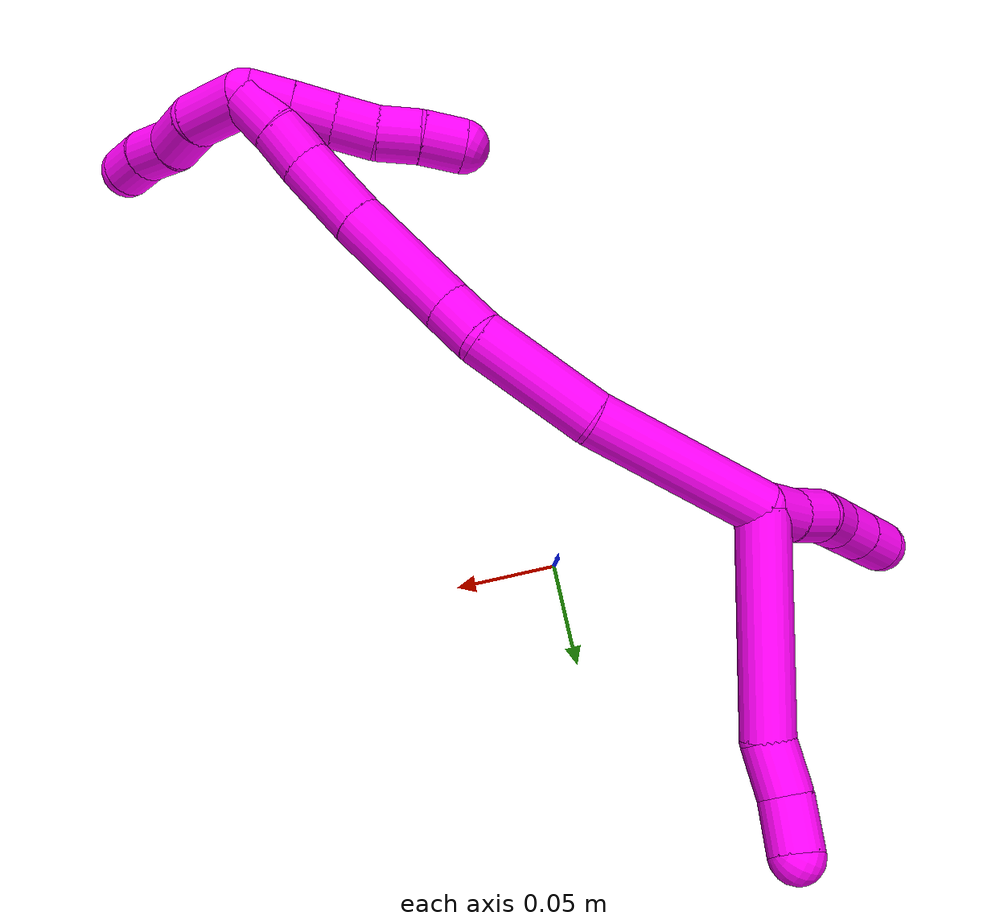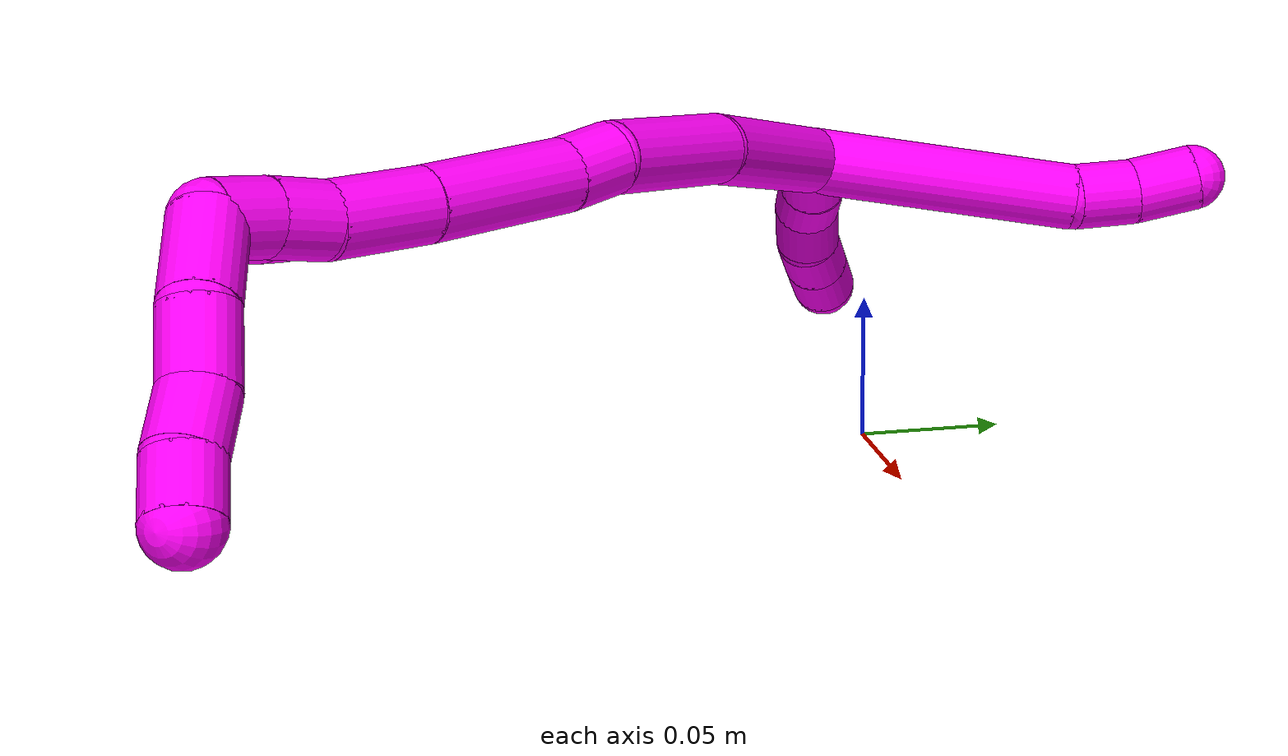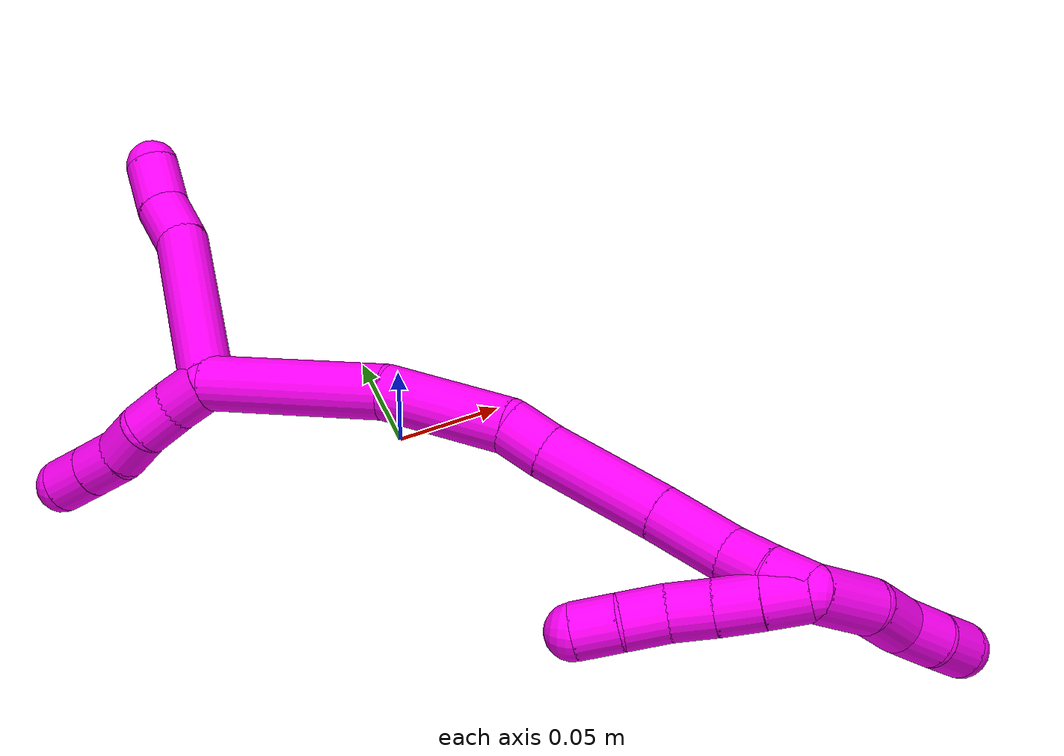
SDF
<sdf version="1.7">
 <world name="default">
  <model name="10">
   <static>0</static>
   <link name="10">
    <collision name="collision-cylinder-e_1_2_8">
     <pose>-0.035525 0.028665 -0.021549 -2.21541 -0.78068 1.37847</pose>
     <geometry><cylinder><radius>0.0125</radius><length>0.100956</length></cylinder></geometry>
     <surface>
      <friction><ode><mu>1.16</mu><mu2>1.16</mu2><slip1>0</slip1><slip2>0</slip2></ode></friction>
      <contact><ode><kp>1e+06</kp><kd>1</kd><max_vel>0</max_vel><min_depth>0.001</min_depth></ode></contact>
     </surface>
    </collision>
    <visual name="visual-cylinder-e_1_2_8">
     <pose>-0.035525 0.028665 -0.021549 -2.21541 -0.78068 1.37847</pose>
     <geometry><cylinder><radius>0.0125</radius><length>0.100956</length></cylinder></geometry>
     <material><ambient>1 0 0.964706 1</ambient></material>
    </visual>
    <collision name="collision-cylinder-e_2_8_9">
     <pose>-0.079731 0.061354 -0.050677 -2.65363 -0.791194 2.06649</pose>
     <geometry><cylinder><radius>0.0125</radius><length>0.024414</length></cylinder></geometry>
     <surface>
      <friction><ode><mu>1.16</mu><mu2>1.16</mu2><slip1>0</slip1><slip2>0</slip2></ode></friction>
      <contact><ode><kp>1e+06</kp><kd>1</kd><max_vel>0</max_vel><min_depth>0.001</min_depth></ode></contact>
     </surface>
    </collision>
    <visual name="visual-cylinder-e_2_8_9">
     <pose>-0.079731 0.061354 -0.050677 -2.65363 -0.791194 2.06649</pose>
     <geometry><cylinder><radius>0.0125</radius><length>0.024414</length></cylinder></geometry>
     <material><ambient>1 0 0.964706 1</ambient></material>
    </visual>
    <collision name="collision-cylinder-e_3_9_6">
     <pose>-0.099032 0.068327 -0.063751 -2.64878 -1.03984 2.31365</pose>
     <geometry><cylinder><radius>0.0125</radius><length>0.02463</length></cylinder></geometry>
     <surface>
      <friction><ode><mu>1.16</mu><mu2>1.16</mu2><slip1>0</slip1><slip2>0</slip2></ode></friction>
      <contact><ode><kp>1e+06</kp><kd>1</kd><max_vel>0</max_vel><min_depth>0.001</min_depth></ode></contact>
     </surface>
    </collision>
    <visual name="visual-cylinder-e_3_9_6">
     <pose>-0.099032 0.068327 -0.063751 -2.64878 -1.03984 2.31365</pose>
     <geometry><cylinder><radius>0.0125</radius><length>0.02463</length></cylinder></geometry>
     <material><ambient>1 0 0.964706 1</ambient></material>
    </visual>
    <collision name="collision-cylinder-e_1_2_10">
     <pose>0.005285 0.003006 -0.007939 -2.7797 0.556841 -2.00294</pose>
     <geometry><cylinder><radius>0.0125</radius><length>0.02</length></cylinder></geometry>
     <surface>
      <friction><ode><mu>1.16</mu><mu2>1.16</mu2><slip1>0</slip1><slip2>0</slip2></ode></friction>
      <contact><ode><kp>1e+06</kp><kd>1</kd><max_vel>0</max_vel><min_depth>0.001</min_depth></ode></contact>
     </surface>
    </collision>
    <visual name="visual-cylinder-e_1_2_10">
     <pose>0.005285 0.003006 -0.007939 -2.7797 0.556841 -2.00294</pose>
     <geometry><cylinder><radius>0.0125</radius><length>0.02</length></cylinder></geometry>
     <material><ambient>1 0 0.964706 1</ambient></material>
    </visual>
    <collision name="collision-cylinder-e_2_10_11">
     <pose>0.01671 0.008012 -0.023514 -2.88531 0.661063 -2.42314</pose>
     <geometry><cylinder><radius>0.0125</radius><length>0.02</length></cylinder></geometry>
     <surface>
      <friction><ode><mu>1.16</mu><mu2>1.16</mu2><slip1>0</slip1><slip2>0</slip2></ode></friction>
      <contact><ode><kp>1e+06</kp><kd>1</kd><max_vel>0</max_vel><min_depth>0.001</min_depth></ode></contact>
     </surface>
    </collision>
    <visual name="visual-cylinder-e_2_10_11">
     <pose>0.01671 0.008012 -0.023514 -2.88531 0.661063 -2.42314</pose>
     <geometry><cylinder><radius>0.0125</radius><length>0.02</length></cylinder></geometry>
     <material><ambient>1 0 0.964706 1</ambient></material>
    </visual>
    <collision name="collision-cylinder-e_3_11_12">
     <pose>0.028544 0.014921 -0.037744 -2.50176 0.605892 -1.51263</pose>
     <geometry><cylinder><radius>0.0125</radius><length>0.02</length></cylinder></geometry>
     <surface>
      <friction><ode><mu>1.16</mu><mu2>1.16</mu2><slip1>0</slip1><slip2>0</slip2></ode></friction>
      <contact><ode><kp>1e+06</kp><kd>1</kd><max_vel>0</max_vel><min_depth>0.001</min_depth></ode></contact>
     </surface>
    </collision>
    <visual name="visual-cylinder-e_3_11_12">
     <pose>0.028544 0.014921 -0.037744 -2.50176 0.605892 -1.51263</pose>
     <geometry><cylinder><radius>0.0125</radius><length>0.02</length></cylinder></geometry>
     <material><ambient>1 0 0.964706 1</ambient></material>
    </visual>
    <collision name="collision-cylinder-e_4_12_13">
     <pose>0.038272 0.023693 -0.052633 -2.70562 0.415133 -1.52034</pose>
     <geometry><cylinder><radius>0.0125</radius><length>0.02</length></cylinder></geometry>
     <surface>
      <friction><ode><mu>1.16</mu><mu2>1.16</mu2><slip1>0</slip1><slip2>0</slip2></ode></friction>
      <contact><ode><kp>1e+06</kp><kd>1</kd><max_vel>0</max_vel><min_depth>0.001</min_depth></ode></contact>
     </surface>
    </collision>
    <visual name="visual-cylinder-e_4_12_13">
     <pose>0.038272 0.023693 -0.052633 -2.70562 0.415133 -1.52034</pose>
     <geometry><cylinder><radius>0.0125</radius><length>0.02</length></cylinder></geometry>
     <material><ambient>1 0 0.964706 1</ambient></material>
    </visual>
    <collision name="collision-cylinder-e_5_13_5">
     <pose>0.046304 0.031355 -0.069269 -2.71434 0.411339 -1.53173</pose>
     <geometry><cylinder><radius>0.0125</radius><length>0.02</length></cylinder></geometry>
     <surface>
      <friction><ode><mu>1.16</mu><mu2>1.16</mu2><slip1>0</slip1><slip2>0</slip2></ode></friction>
      <contact><ode><kp>1e+06</kp><kd>1</kd><max_vel>0</max_vel><min_depth>0.001</min_depth></ode></contact>
     </surface>
    </collision>
    <visual name="visual-cylinder-e_5_13_5">
     <pose>0.046304 0.031355 -0.069269 -2.71434 0.411339 -1.53173</pose>
     <geometry><cylinder><radius>0.0125</radius><length>0.02</length></cylinder></geometry>
     <material><ambient>1 0 0.964706 1</ambient></material>
    </visual>
    <collision name="collision-cylinder-e_1_2_14">
     <pose>-0.001134 -0.003898 0.043 0.090401 -0.026269 -0.001188</pose>
     <geometry><cylinder><radius>0.0125</radius><length>0.086382</length></cylinder></geometry>
     <surface>
      <friction><ode><mu>1.16</mu><mu2>1.16</mu2><slip1>0</slip1><slip2>0</slip2></ode></friction>
      <contact><ode><kp>1e+06</kp><kd>1</kd><max_vel>0</max_vel><min_depth>0.001</min_depth></ode></contact>
     </surface>
    </collision>
    <visual name="visual-cylinder-e_1_2_14">
     <pose>-0.001134 -0.003898 0.043 0.090401 -0.026269 -0.001188</pose>
     <geometry><cylinder><radius>0.0125</radius><length>0.086382</length></cylinder></geometry>
     <material><ambient>1 0 0.964706 1</ambient></material>
    </visual>
    <collision name="collision-cylinder-e_2_14_15">
     <pose>0.00294 -0.01035 0.115323 0.086886 0.175139 0.007633</pose>
     <geometry><cylinder><radius>0.0125</radius><length>0.059784</length></cylinder></geometry>
     <surface>
      <friction><ode><mu>1.16</mu><mu2>1.16</mu2><slip1>0</slip1><slip2>0</slip2></ode></friction>
      <contact><ode><kp>1e+06</kp><kd>1</kd><max_vel>0</max_vel><min_depth>0.001</min_depth></ode></contact>
     </surface>
    </collision>
    <visual name="visual-cylinder-e_2_14_15">
     <pose>0.00294 -0.01035 0.115323 0.086886 0.175139 0.007633</pose>
     <geometry><cylinder><radius>0.0125</radius><length>0.059784</length></cylinder></geometry>
     <material><ambient>1 0 0.964706 1</ambient></material>
    </visual>
    <collision name="collision-cylinder-e_3_15_16">
     <pose>0.012889 -0.012782 0.153844 -0.013232 0.475902 -0.00321</pose>
     <geometry><cylinder><radius>0.0125</radius><length>0.020697</length></cylinder></geometry>
     <surface>
      <friction><ode><mu>1.16</mu><mu2>1.16</mu2><slip1>0</slip1><slip2>0</slip2></ode></friction>
      <contact><ode><kp>1e+06</kp><kd>1</kd><max_vel>0</max_vel><min_depth>0.001</min_depth></ode></contact>
     </surface>
    </collision>
    <visual name="visual-cylinder-e_3_15_16">
     <pose>0.012889 -0.012782 0.153844 -0.013232 0.475902 -0.00321</pose>
     <geometry><cylinder><radius>0.0125</radius><length>0.020697</length></cylinder></geometry>
     <material><ambient>1 0 0.964706 1</ambient></material>
    </visual>
    <collision name="collision-cylinder-e_4_16_17">
     <pose>0.028558 -0.014889 0.189185 0.085018 0.394639 0.017007</pose>
     <geometry><cylinder><radius>0.0125</radius><length>0.056846</length></cylinder></geometry>
     <surface>
      <friction><ode><mu>1.16</mu><mu2>1.16</mu2><slip1>0</slip1><slip2>0</slip2></ode></friction>
      <contact><ode><kp>1e+06</kp><kd>1</kd><max_vel>0</max_vel><min_depth>0.001</min_depth></ode></contact>
     </surface>
    </collision>
    <visual name="visual-cylinder-e_4_16_17">
     <pose>0.028558 -0.014889 0.189185 0.085018 0.394639 0.017007</pose>
     <geometry><cylinder><radius>0.0125</radius><length>0.056846</length></cylinder></geometry>
     <material><ambient>1 0 0.964706 1</ambient></material>
    </visual>
    <collision name="collision-cylinder-e_5_17_18">
     <pose>0.046765 -0.019491 0.231578 0.145058 0.417227 0.030759</pose>
     <geometry><cylinder><radius>0.0125</radius><length>0.035925</length></cylinder></geometry>
     <surface>
      <friction><ode><mu>1.16</mu><mu2>1.16</mu2><slip1>0</slip1><slip2>0</slip2></ode></friction>
      <contact><ode><kp>1e+06</kp><kd>1</kd><max_vel>0</max_vel><min_depth>0.001</min_depth></ode></contact>
     </surface>
    </collision>
    <visual name="visual-cylinder-e_5_17_18">
     <pose>0.046765 -0.019491 0.231578 0.145058 0.417227 0.030759</pose>
     <geometry><cylinder><radius>0.0125</radius><length>0.035925</length></cylinder></geometry>
     <material><ambient>1 0 0.964706 1</ambient></material>
    </visual>
    <collision name="collision-cylinder-e_6_18_19">
     <pose>0.057322 -0.024861 0.256945 0.317585 0.329172 0.053183</pose>
     <geometry><cylinder><radius>0.0125</radius><length>0.020285</length></cylinder></geometry>
     <surface>
      <friction><ode><mu>1.16</mu><mu2>1.16</mu2><slip1>0</slip1><slip2>0</slip2></ode></friction>
      <contact><ode><kp>1e+06</kp><kd>1</kd><max_vel>0</max_vel><min_depth>0.001</min_depth></ode></contact>
     </surface>
    </collision>
    <visual name="visual-cylinder-e_6_18_19">
     <pose>0.057322 -0.024861 0.256945 0.317585 0.329172 0.053183</pose>
     <geometry><cylinder><radius>0.0125</radius><length>0.020285</length></cylinder></geometry>
     <material><ambient>1 0 0.964706 1</ambient></material>
    </visual>
    <collision name="collision-cylinder-e_7_19_1">
     <pose>0.063581 -0.029796 0.275454 0.203394 0.301322 0.030982</pose>
     <geometry><cylinder><radius>0.0125</radius><length>0.020082</length></cylinder></geometry>
     <surface>
      <friction><ode><mu>1.16</mu><mu2>1.16</mu2><slip1>0</slip1><slip2>0</slip2></ode></friction>
      <contact><ode><kp>1e+06</kp><kd>1</kd><max_vel>0</max_vel><min_depth>0.001</min_depth></ode></contact>
     </surface>
    </collision>
    <visual name="visual-cylinder-e_7_19_1">
     <pose>0.063581 -0.029796 0.275454 0.203394 0.301322 0.030982</pose>
     <geometry><cylinder><radius>0.0125</radius><length>0.020082</length></cylinder></geometry>
     <material><ambient>1 0 0.964706 1</ambient></material>
    </visual>
    <collision name="collision-cylinder-e_1_1_20">
     <pose>0.067587 -0.019036 0.295194 -0.886889 0.062549 -0.029718</pose>
     <geometry><cylinder><radius>0.0125</radius><length>0.032825</length></cylinder></geometry>
     <surface>
      <friction><ode><mu>1.16</mu><mu2>1.16</mu2><slip1>0</slip1><slip2>0</slip2></ode></friction>
      <contact><ode><kp>1e+06</kp><kd>1</kd><max_vel>0</max_vel><min_depth>0.001</min_depth></ode></contact>
     </surface>
    </collision>
    <visual name="visual-cylinder-e_1_1_20">
     <pose>0.067587 -0.019036 0.295194 -0.886889 0.062549 -0.029718</pose>
     <geometry><cylinder><radius>0.0125</radius><length>0.032825</length></cylinder></geometry>
     <material><ambient>1 0 0.964706 1</ambient></material>
    </visual>
    <collision name="collision-cylinder-e_2_20_21">
     <pose>0.07124 0.004982 0.310601 -1.15071 0.208807 -0.135708</pose>
     <geometry><cylinder><radius>0.0125</radius><length>0.025349</length></cylinder></geometry>
     <surface>
      <friction><ode><mu>1.16</mu><mu2>1.16</mu2><slip1>0</slip1><slip2>0</slip2></ode></friction>
      <contact><ode><kp>1e+06</kp><kd>1</kd><max_vel>0</max_vel><min_depth>0.001</min_depth></ode></contact>
     </surface>
    </collision>
    <visual name="visual-cylinder-e_2_20_21">
     <pose>0.07124 0.004982 0.310601 -1.15071 0.208807 -0.135708</pose>
     <geometry><cylinder><radius>0.0125</radius><length>0.025349</length></cylinder></geometry>
     <material><ambient>1 0 0.964706 1</ambient></material>
    </visual>
    <collision name="collision-cylinder-e_3_21_22">
     <pose>0.075864 0.024437 0.32262 -0.86283 0.184394 -0.085073</pose>
     <geometry><cylinder><radius>0.0125</radius><length>0.021782</length></cylinder></geometry>
     <surface>
      <friction><ode><mu>1.16</mu><mu2>1.16</mu2><slip1>0</slip1><slip2>0</slip2></ode></friction>
      <contact><ode><kp>1e+06</kp><kd>1</kd><max_vel>0</max_vel><min_depth>0.001</min_depth></ode></contact>
     </surface>
    </collision>
    <visual name="visual-cylinder-e_3_21_22">
     <pose>0.075864 0.024437 0.32262 -0.86283 0.184394 -0.085073</pose>
     <geometry><cylinder><radius>0.0125</radius><length>0.021782</length></cylinder></geometry>
     <material><ambient>1 0 0.964706 1</ambient></material>
    </visual>
    <collision name="collision-cylinder-e_4_22_4">
     <pose>0.079099 0.041207 0.334514 -1.05193 0.123785 -0.071919</pose>
     <geometry><cylinder><radius>0.0125</radius><length>0.020044</length></cylinder></geometry>
     <surface>
      <friction><ode><mu>1.16</mu><mu2>1.16</mu2><slip1>0</slip1><slip2>0</slip2></ode></friction>
      <contact><ode><kp>1e+06</kp><kd>1</kd><max_vel>0</max_vel><min_depth>0.001</min_depth></ode></contact>
     </surface>
    </collision>
    <visual name="visual-cylinder-e_4_22_4">
     <pose>0.079099 0.041207 0.334514 -1.05193 0.123785 -0.071919</pose>
     <geometry><cylinder><radius>0.0125</radius><length>0.020044</length></cylinder></geometry>
     <material><ambient>1 0 0.964706 1</ambient></material>
    </visual>
    <collision name="collision-cylinder-e_1_1_23">
     <pose>0.069279 -0.032135 0.27523 3.09974 0.275241 2.8416</pose>
     <geometry><cylinder><radius>0.0125</radius><length>0.02</length></cylinder></geometry>
     <surface>
      <friction><ode><mu>1.16</mu><mu2>1.16</mu2><slip1>0</slip1><slip2>0</slip2></ode></friction>
      <contact><ode><kp>1e+06</kp><kd>1</kd><max_vel>0</max_vel><min_depth>0.001</min_depth></ode></contact>
     </surface>
    </collision>
    <visual name="visual-cylinder-e_1_1_23">
     <pose>0.069279 -0.032135 0.27523 3.09974 0.275241 2.8416</pose>
     <geometry><cylinder><radius>0.0125</radius><length>0.02</length></cylinder></geometry>
     <material><ambient>1 0 0.964706 1</ambient></material>
    </visual>
    <collision name="collision-cylinder-e_2_23_24">
     <pose>0.074477 -0.032802 0.255931 3.11429 0.250724 2.92574</pose>
     <geometry><cylinder><radius>0.0125</radius><length>0.02</length></cylinder></geometry>
     <surface>
      <friction><ode><mu>1.16</mu><mu2>1.16</mu2><slip1>0</slip1><slip2>0</slip2></ode></friction>
      <contact><ode><kp>1e+06</kp><kd>1</kd><max_vel>0</max_vel><min_depth>0.001</min_depth></ode></contact>
     </surface>
    </collision>
    <visual name="visual-cylinder-e_2_23_24">
     <pose>0.074477 -0.032802 0.255931 3.11429 0.250724 2.92574</pose>
     <geometry><cylinder><radius>0.0125</radius><length>0.02</length></cylinder></geometry>
     <material><ambient>1 0 0.964706 1</ambient></material>
    </visual>
    <collision name="collision-cylinder-e_3_24_25">
     <pose>0.079146 -0.033634 0.236506 3.08346 0.220582 2.62806</pose>
     <geometry><cylinder><radius>0.0125</radius><length>0.02</length></cylinder></geometry>
     <surface>
      <friction><ode><mu>1.16</mu><mu2>1.16</mu2><slip1>0</slip1><slip2>0</slip2></ode></friction>
      <contact><ode><kp>1e+06</kp><kd>1</kd><max_vel>0</max_vel><min_depth>0.001</min_depth></ode></contact>
     </surface>
    </collision>
    <visual name="visual-cylinder-e_3_24_25">
     <pose>0.079146 -0.033634 0.236506 3.08346 0.220582 2.62806</pose>
     <geometry><cylinder><radius>0.0125</radius><length>0.02</length></cylinder></geometry>
     <material><ambient>1 0 0.964706 1</ambient></material>
    </visual>
    <collision name="collision-cylinder-e_4_25_26">
     <pose>0.084357 -0.036402 0.21749 2.90859 0.307058 1.84657</pose>
     <geometry><cylinder><radius>0.0125</radius><length>0.02</length></cylinder></geometry>
     <surface>
      <friction><ode><mu>1.16</mu><mu2>1.16</mu2><slip1>0</slip1><slip2>0</slip2></ode></friction>
      <contact><ode><kp>1e+06</kp><kd>1</kd><max_vel>0</max_vel><min_depth>0.001</min_depth></ode></contact>
     </surface>
    </collision>
    <visual name="visual-cylinder-e_4_25_26">
     <pose>0.084357 -0.036402 0.21749 2.90859 0.307058 1.84657</pose>
     <geometry><cylinder><radius>0.0125</radius><length>0.02</length></cylinder></geometry>
     <material><ambient>1 0 0.964706 1</ambient></material>
    </visual>
    <collision name="collision-cylinder-e_5_26_3">
     <pose>0.090377 -0.039286 0.198699 3.06986 0.304382 2.68195</pose>
     <geometry><cylinder><radius>0.0125</radius><length>0.02</length></cylinder></geometry>
     <surface>
      <friction><ode><mu>1.16</mu><mu2>1.16</mu2><slip1>0</slip1><slip2>0</slip2></ode></friction>
      <contact><ode><kp>1e+06</kp><kd>1</kd><max_vel>0</max_vel><min_depth>0.001</min_depth></ode></contact>
     </surface>
    </collision>
    <visual name="visual-cylinder-e_5_26_3">
     <pose>0.090377 -0.039286 0.198699 3.06986 0.304382 2.68195</pose>
     <geometry><cylinder><radius>0.0125</radius><length>0.02</length></cylinder></geometry>
     <material><ambient>1 0 0.964706 1</ambient></material>
    </visual>
    <collision name="collision-sphere-3">
     <pose>0.093374 -0.03997 0.189184 0 -0 0</pose>
     <geometry><sphere><radius>0.0125</radius></sphere></geometry>
     <surface>
      <friction><ode><mu>1.16</mu><mu2>1.16</mu2><slip1>0</slip1><slip2>0</slip2></ode></friction>
      <contact><ode><kp>1e+06</kp><kd>1</kd><max_vel>0</max_vel><min_depth>0.001</min_depth></ode></contact>
     </surface>
    </collision>
    <visual name="visual-sphere-3">
     <pose>0.093374 -0.03997 0.189184 0 -0 0</pose>
     <geometry><sphere><radius>0.0125</radius></sphere></geometry>
     <material><ambient>1 0 0.964706 1</ambient></material>
    </visual>
    <collision name="collision-sphere-26">
     <pose>0.08738 -0.038603 0.208215 0 -0 0</pose>
     <geometry><sphere><radius>0.0125</radius></sphere></geometry>
     <surface>
      <friction><ode><mu>1.16</mu><mu2>1.16</mu2><slip1>0</slip1><slip2>0</slip2></ode></friction>
      <contact><ode><kp>1e+06</kp><kd>1</kd><max_vel>0</max_vel><min_depth>0.001</min_depth></ode></contact>
     </surface>
    </collision>
    <visual name="visual-sphere-26">
     <pose>0.08738 -0.038603 0.208215 0 -0 0</pose>
     <geometry><sphere><radius>0.0125</radius></sphere></geometry>
     <material><ambient>1 0 0.964706 1</ambient></material>
    </visual>
    <collision name="collision-sphere-25">
     <pose>0.081334 -0.034201 0.226765 0 -0 0</pose>
     <geometry><sphere><radius>0.0125</radius></sphere></geometry>
     <surface>
      <friction><ode><mu>1.16</mu><mu2>1.16</mu2><slip1>0</slip1><slip2>0</slip2></ode></friction>
      <contact><ode><kp>1e+06</kp><kd>1</kd><max_vel>0</max_vel><min_depth>0.001</min_depth></ode></contact>
     </surface>
    </collision>
    <visual name="visual-sphere-25">
     <pose>0.081334 -0.034201 0.226765 0 -0 0</pose>
     <geometry><sphere><radius>0.0125</radius></sphere></geometry>
     <material><ambient>1 0 0.964706 1</ambient></material>
    </visual>
    <collision name="collision-sphere-24">
     <pose>0.076958 -0.033067 0.246247 0 -0 0</pose>
     <geometry><sphere><radius>0.0125</radius></sphere></geometry>
     <surface>
      <friction><ode><mu>1.16</mu><mu2>1.16</mu2><slip1>0</slip1><slip2>0</slip2></ode></friction>
      <contact><ode><kp>1e+06</kp><kd>1</kd><max_vel>0</max_vel><min_depth>0.001</min_depth></ode></contact>
     </surface>
    </collision>
    <visual name="visual-sphere-24">
     <pose>0.076958 -0.033067 0.246247 0 -0 0</pose>
     <geometry><sphere><radius>0.0125</radius></sphere></geometry>
     <material><ambient>1 0 0.964706 1</ambient></material>
    </visual>
    <collision name="collision-sphere-23">
     <pose>0.071996 -0.032538 0.265614 0 -0 0</pose>
     <geometry><sphere><radius>0.0125</radius></sphere></geometry>
     <surface>
      <friction><ode><mu>1.16</mu><mu2>1.16</mu2><slip1>0</slip1><slip2>0</slip2></ode></friction>
      <contact><ode><kp>1e+06</kp><kd>1</kd><max_vel>0</max_vel><min_depth>0.001</min_depth></ode></contact>
     </surface>
    </collision>
    <visual name="visual-sphere-23">
     <pose>0.071996 -0.032538 0.265614 0 -0 0</pose>
     <geometry><sphere><radius>0.0125</radius></sphere></geometry>
     <material><ambient>1 0 0.964706 1</ambient></material>
    </visual>
    <collision name="collision-sphere-4">
     <pose>0.080336 0.049843 0.339446 0 -0 0</pose>
     <geometry><sphere><radius>0.0125</radius></sphere></geometry>
     <surface>
      <friction><ode><mu>1.16</mu><mu2>1.16</mu2><slip1>0</slip1><slip2>0</slip2></ode></friction>
      <contact><ode><kp>1e+06</kp><kd>1</kd><max_vel>0</max_vel><min_depth>0.001</min_depth></ode></contact>
     </surface>
    </collision>
    <visual name="visual-sphere-4">
     <pose>0.080336 0.049843 0.339446 0 -0 0</pose>
     <geometry><sphere><radius>0.0125</radius></sphere></geometry>
     <material><ambient>1 0 0.964706 1</ambient></material>
    </visual>
    <collision name="collision-sphere-22">
     <pose>0.077861 0.03257 0.329582 0 -0 0</pose>
     <geometry><sphere><radius>0.0125</radius></sphere></geometry>
     <surface>
      <friction><ode><mu>1.16</mu><mu2>1.16</mu2><slip1>0</slip1><slip2>0</slip2></ode></friction>
      <contact><ode><kp>1e+06</kp><kd>1</kd><max_vel>0</max_vel><min_depth>0.001</min_depth></ode></contact>
     </surface>
    </collision>
    <visual name="visual-sphere-22">
     <pose>0.077861 0.03257 0.329582 0 -0 0</pose>
     <geometry><sphere><radius>0.0125</radius></sphere></geometry>
     <material><ambient>1 0 0.964706 1</ambient></material>
    </visual>
    <collision name="collision-sphere-21">
     <pose>0.073867 0.016303 0.315657 0 -0 0</pose>
     <geometry><sphere><radius>0.0125</radius></sphere></geometry>
     <surface>
      <friction><ode><mu>1.16</mu><mu2>1.16</mu2><slip1>0</slip1><slip2>0</slip2></ode></friction>
      <contact><ode><kp>1e+06</kp><kd>1</kd><max_vel>0</max_vel><min_depth>0.001</min_depth></ode></contact>
     </surface>
    </collision>
    <visual name="visual-sphere-21">
     <pose>0.073867 0.016303 0.315657 0 -0 0</pose>
     <geometry><sphere><radius>0.0125</radius></sphere></geometry>
     <material><ambient>1 0 0.964706 1</ambient></material>
    </visual>
    <collision name="collision-sphere-20">
     <pose>0.068613 -0.006339 0.305544 0 -0 0</pose>
     <geometry><sphere><radius>0.0125</radius></sphere></geometry>
     <surface>
      <friction><ode><mu>1.16</mu><mu2>1.16</mu2><slip1>0</slip1><slip2>0</slip2></ode></friction>
      <contact><ode><kp>1e+06</kp><kd>1</kd><max_vel>0</max_vel><min_depth>0.001</min_depth></ode></contact>
     </surface>
    </collision>
    <visual name="visual-sphere-20">
     <pose>0.068613 -0.006339 0.305544 0 -0 0</pose>
     <geometry><sphere><radius>0.0125</radius></sphere></geometry>
     <material><ambient>1 0 0.964706 1</ambient></material>
    </visual>
    <collision name="collision-sphere-11">
     <pose>0.022849 0.010013 -0.03115 0 -0 0</pose>
     <geometry><sphere><radius>0.0125</radius></sphere></geometry>
     <surface>
      <friction><ode><mu>1.16</mu><mu2>1.16</mu2><slip1>0</slip1><slip2>0</slip2></ode></friction>
      <contact><ode><kp>1e+06</kp><kd>1</kd><max_vel>0</max_vel><min_depth>0.001</min_depth></ode></contact>
     </surface>
    </collision>
    <visual name="visual-sphere-11">
     <pose>0.022849 0.010013 -0.03115 0 -0 0</pose>
     <geometry><sphere><radius>0.0125</radius></sphere></geometry>
     <material><ambient>1 0 0.964706 1</ambient></material>
    </visual>
    <collision name="collision-sphere-10">
     <pose>0.01057 0.006011 -0.015879 0 -0 0</pose>
     <geometry><sphere><radius>0.0125</radius></sphere></geometry>
     <surface>
      <friction><ode><mu>1.16</mu><mu2>1.16</mu2><slip1>0</slip1><slip2>0</slip2></ode></friction>
      <contact><ode><kp>1e+06</kp><kd>1</kd><max_vel>0</max_vel><min_depth>0.001</min_depth></ode></contact>
     </surface>
    </collision>
    <visual name="visual-sphere-10">
     <pose>0.01057 0.006011 -0.015879 0 -0 0</pose>
     <geometry><sphere><radius>0.0125</radius></sphere></geometry>
     <material><ambient>1 0 0.964706 1</ambient></material>
    </visual>
    <collision name="collision-sphere-6">
     <pose>-0.109651 0.071277 -0.069245 0 -0 0</pose>
     <geometry><sphere><radius>0.0125</radius></sphere></geometry>
     <surface>
      <friction><ode><mu>1.16</mu><mu2>1.16</mu2><slip1>0</slip1><slip2>0</slip2></ode></friction>
      <contact><ode><kp>1e+06</kp><kd>1</kd><max_vel>0</max_vel><min_depth>0.001</min_depth></ode></contact>
     </surface>
    </collision>
    <visual name="visual-sphere-6">
     <pose>-0.109651 0.071277 -0.069245 0 -0 0</pose>
     <geometry><sphere><radius>0.0125</radius></sphere></geometry>
     <material><ambient>1 0 0.964706 1</ambient></material>
    </visual>
    <collision name="collision-sphere-9">
     <pose>-0.088412 0.065377 -0.058258 0 -0 0</pose>
     <geometry><sphere><radius>0.0125</radius></sphere></geometry>
     <surface>
      <friction><ode><mu>1.16</mu><mu2>1.16</mu2><slip1>0</slip1><slip2>0</slip2></ode></friction>
      <contact><ode><kp>1e+06</kp><kd>1</kd><max_vel>0</max_vel><min_depth>0.001</min_depth></ode></contact>
     </surface>
    </collision>
    <visual name="visual-sphere-9">
     <pose>-0.088412 0.065377 -0.058258 0 -0 0</pose>
     <geometry><sphere><radius>0.0125</radius></sphere></geometry>
     <material><ambient>1 0 0.964706 1</ambient></material>
    </visual>
    <collision name="collision-sphere-2">
     <geometry><sphere><radius>0.0125</radius></sphere></geometry>
     <surface>
      <friction><ode><mu>1.16</mu><mu2>1.16</mu2><slip1>0</slip1><slip2>0</slip2></ode></friction>
      <contact><ode><kp>1e+06</kp><kd>1</kd><max_vel>0</max_vel><min_depth>0.001</min_depth></ode></contact>
     </surface>
    </collision>
    <visual name="visual-sphere-2">
     <geometry><sphere><radius>0.0125</radius></sphere></geometry>
     <material><ambient>1 0 0.964706 1</ambient></material>
    </visual>
    <collision name="collision-sphere-19">
     <pose>0.060601 -0.027859 0.266063 0 -0 0</pose>
     <geometry><sphere><radius>0.0125</radius></sphere></geometry>
     <surface>
      <friction><ode><mu>1.16</mu><mu2>1.16</mu2><slip1>0</slip1><slip2>0</slip2></ode></friction>
      <contact><ode><kp>1e+06</kp><kd>1</kd><max_vel>0</max_vel><min_depth>0.001</min_depth></ode></contact>
     </surface>
    </collision>
    <visual name="visual-sphere-19">
     <pose>0.060601 -0.027859 0.266063 0 -0 0</pose>
     <geometry><sphere><radius>0.0125</radius></sphere></geometry>
     <material><ambient>1 0 0.964706 1</ambient></material>
    </visual>
    <collision name="collision-sphere-8">
     <pose>-0.071049 0.05733 -0.043097 0 -0 0</pose>
     <geometry><sphere><radius>0.0125</radius></sphere></geometry>
     <surface>
      <friction><ode><mu>1.16</mu><mu2>1.16</mu2><slip1>0</slip1><slip2>0</slip2></ode></friction>
      <contact><ode><kp>1e+06</kp><kd>1</kd><max_vel>0</max_vel><min_depth>0.001</min_depth></ode></contact>
     </surface>
    </collision>
    <visual name="visual-sphere-8">
     <pose>-0.071049 0.05733 -0.043097 0 -0 0</pose>
     <geometry><sphere><radius>0.0125</radius></sphere></geometry>
     <material><ambient>1 0 0.964706 1</ambient></material>
    </visual>
    <collision name="collision-sphere-12">
     <pose>0.034239 0.019828 -0.044338 0 -0 0</pose>
     <geometry><sphere><radius>0.0125</radius></sphere></geometry>
     <surface>
      <friction><ode><mu>1.16</mu><mu2>1.16</mu2><slip1>0</slip1><slip2>0</slip2></ode></friction>
      <contact><ode><kp>1e+06</kp><kd>1</kd><max_vel>0</max_vel><min_depth>0.001</min_depth></ode></contact>
     </surface>
    </collision>
    <visual name="visual-sphere-12">
     <pose>0.034239 0.019828 -0.044338 0 -0 0</pose>
     <geometry><sphere><radius>0.0125</radius></sphere></geometry>
     <material><ambient>1 0 0.964706 1</ambient></material>
    </visual>
    <collision name="collision-sphere-13">
     <pose>0.042305 0.027557 -0.060927 0 -0 0</pose>
     <geometry><sphere><radius>0.0125</radius></sphere></geometry>
     <surface>
      <friction><ode><mu>1.16</mu><mu2>1.16</mu2><slip1>0</slip1><slip2>0</slip2></ode></friction>
      <contact><ode><kp>1e+06</kp><kd>1</kd><max_vel>0</max_vel><min_depth>0.001</min_depth></ode></contact>
     </surface>
    </collision>
    <visual name="visual-sphere-13">
     <pose>0.042305 0.027557 -0.060927 0 -0 0</pose>
     <geometry><sphere><radius>0.0125</radius></sphere></geometry>
     <material><ambient>1 0 0.964706 1</ambient></material>
    </visual>
    <collision name="collision-sphere-5">
     <pose>0.050302 0.035153 -0.077611 0 -0 0</pose>
     <geometry><sphere><radius>0.0125</radius></sphere></geometry>
     <surface>
      <friction><ode><mu>1.16</mu><mu2>1.16</mu2><slip1>0</slip1><slip2>0</slip2></ode></friction>
      <contact><ode><kp>1e+06</kp><kd>1</kd><max_vel>0</max_vel><min_depth>0.001</min_depth></ode></contact>
     </surface>
    </collision>
    <visual name="visual-sphere-5">
     <pose>0.050302 0.035153 -0.077611 0 -0 0</pose>
     <geometry><sphere><radius>0.0125</radius></sphere></geometry>
     <material><ambient>1 0 0.964706 1</ambient></material>
    </visual>
    <collision name="collision-sphere-14">
     <pose>-0.002269 -0.007796 0.086 0 -0 0</pose>
     <geometry><sphere><radius>0.0125</radius></sphere></geometry>
     <surface>
      <friction><ode><mu>1.16</mu><mu2>1.16</mu2><slip1>0</slip1><slip2>0</slip2></ode></friction>
      <contact><ode><kp>1e+06</kp><kd>1</kd><max_vel>0</max_vel><min_depth>0.001</min_depth></ode></contact>
     </surface>
    </collision>
    <visual name="visual-sphere-14">
     <pose>-0.002269 -0.007796 0.086 0 -0 0</pose>
     <geometry><sphere><radius>0.0125</radius></sphere></geometry>
     <material><ambient>1 0 0.964706 1</ambient></material>
    </visual>
    <collision name="collision-sphere-15">
     <pose>0.008148 -0.012904 0.144647 0 -0 0</pose>
     <geometry><sphere><radius>0.0125</radius></sphere></geometry>
     <surface>
      <friction><ode><mu>1.16</mu><mu2>1.16</mu2><slip1>0</slip1><slip2>0</slip2></ode></friction>
      <contact><ode><kp>1e+06</kp><kd>1</kd><max_vel>0</max_vel><min_depth>0.001</min_depth></ode></contact>
     </surface>
    </collision>
    <visual name="visual-sphere-15">
     <pose>0.008148 -0.012904 0.144647 0 -0 0</pose>
     <geometry><sphere><radius>0.0125</radius></sphere></geometry>
     <material><ambient>1 0 0.964706 1</ambient></material>
    </visual>
    <collision name="collision-sphere-16">
     <pose>0.01763 -0.012661 0.163042 0 -0 0</pose>
     <geometry><sphere><radius>0.0125</radius></sphere></geometry>
     <surface>
      <friction><ode><mu>1.16</mu><mu2>1.16</mu2><slip1>0</slip1><slip2>0</slip2></ode></friction>
      <contact><ode><kp>1e+06</kp><kd>1</kd><max_vel>0</max_vel><min_depth>0.001</min_depth></ode></contact>
     </surface>
    </collision>
    <visual name="visual-sphere-16">
     <pose>0.01763 -0.012661 0.163042 0 -0 0</pose>
     <geometry><sphere><radius>0.0125</radius></sphere></geometry>
     <material><ambient>1 0 0.964706 1</ambient></material>
    </visual>
    <collision name="collision-sphere-17">
     <pose>0.039486 -0.017117 0.215329 0 -0 0</pose>
     <geometry><sphere><radius>0.0125</radius></sphere></geometry>
     <surface>
      <friction><ode><mu>1.16</mu><mu2>1.16</mu2><slip1>0</slip1><slip2>0</slip2></ode></friction>
      <contact><ode><kp>1e+06</kp><kd>1</kd><max_vel>0</max_vel><min_depth>0.001</min_depth></ode></contact>
     </surface>
    </collision>
    <visual name="visual-sphere-17">
     <pose>0.039486 -0.017117 0.215329 0 -0 0</pose>
     <geometry><sphere><radius>0.0125</radius></sphere></geometry>
     <material><ambient>1 0 0.964706 1</ambient></material>
    </visual>
    <collision name="collision-sphere-18">
     <pose>0.054044 -0.021864 0.247827 0 -0 0</pose>
     <geometry><sphere><radius>0.0125</radius></sphere></geometry>
     <surface>
      <friction><ode><mu>1.16</mu><mu2>1.16</mu2><slip1>0</slip1><slip2>0</slip2></ode></friction>
      <contact><ode><kp>1e+06</kp><kd>1</kd><max_vel>0</max_vel><min_depth>0.001</min_depth></ode></contact>
     </surface>
    </collision>
    <visual name="visual-sphere-18">
     <pose>0.054044 -0.021864 0.247827 0 -0 0</pose>
     <geometry><sphere><radius>0.0125</radius></sphere></geometry>
     <material><ambient>1 0 0.964706 1</ambient></material>
    </visual>
    <collision name="collision-sphere-1">
     <pose>0.066561 -0.031732 0.284845 0 -0 0</pose>
     <geometry><sphere><radius>0.0125</radius></sphere></geometry>
     <surface>
      <friction><ode><mu>1.16</mu><mu2>1.16</mu2><slip1>0</slip1><slip2>0</slip2></ode></friction>
      <contact><ode><kp>1e+06</kp><kd>1</kd><max_vel>0</max_vel><min_depth>0.001</min_depth></ode></contact>
     </surface>
    </collision>
    <visual name="visual-sphere-1">
     <pose>0.066561 -0.031732 0.284845 0 -0 0</pose>
     <geometry><sphere><radius>0.0125</radius></sphere></geometry>
     <material><ambient>1 0 0.964706 1</ambient></material>
    </visual>
    <inertial>
     <pose>0.021377 0.0016 0.119704 0 -0 0</pose>
     <mass>0.75</mass>
     <inertia><ixx>0.000182</ixx><ixy>0</ixy><ixz>0</ixz><iyy>0.000235</iyy><iyz>0</iyz><izz>2e-06</izz></inertia>
    </inertial>
   </link>
   <pose>-0.089742 0.003584 0.080914 -1.39738 0.577052 -2.10899</pose>
  </model>
 </world>
</sdf>
